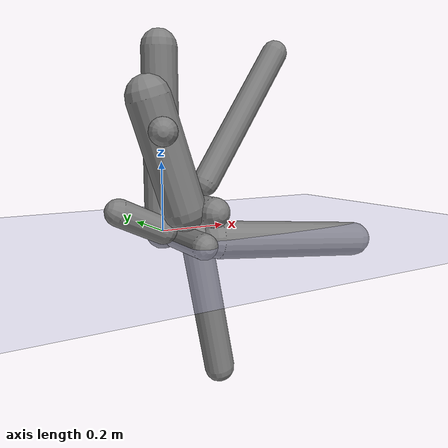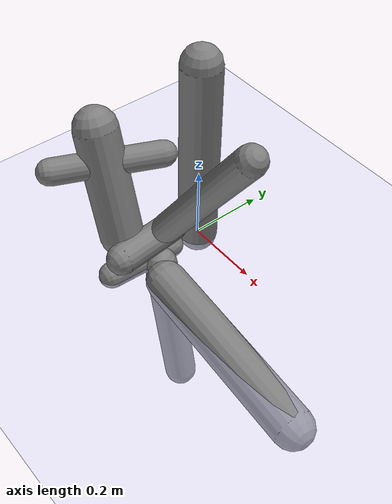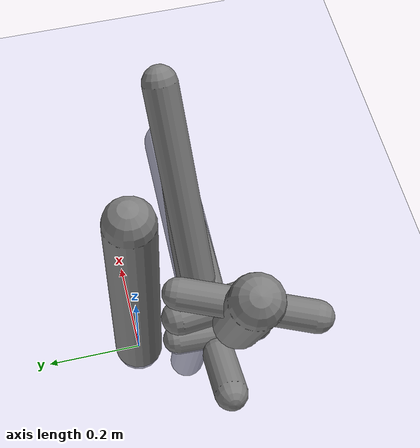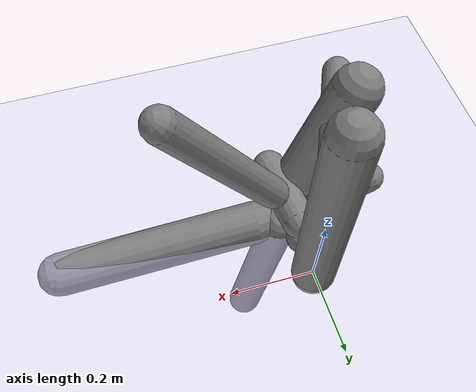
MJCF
<?xml version='1.0' encoding='UTF-8'?>
<mujoco model="robot_model">
  <worldbody>
    <light name="light" pos="0 -3 10" dir="0 0.5 -1" diffuse=".8 .8 .8" specular="0.1 0.1 0.1"/>
    <geom name="floor" type="plane" size="10.0 10.0 0.1" pos="0 0 0" rgba="0.8 0.8 1 1" contype="2" conaffinity="1"/>
    <body name="limb0" pos="0 0 0">
      <geom name="limb0_geom" type="capsule" fromto="0 0 0 0 0 0.520706421890689" size="0.05146849150302902" density="879.1260618133225" contype="1" conaffinity="2"/>
      <site type="sphere" size="0.01" name="limb0_site0" pos="0.009683200890050066 -0.09483830279968951 0.08225487408314747" quat="0.7071067811865476 0.7034496051453099 0.07182376362254696 0.0"/>
      <site type="sphere" size="0.01" name="limb0_site1" pos="-0.00316757121490341 -0.08967798132633308 0.00015657126967375578" quat="0.7071067811865476 0.7066660944373666 -0.024960588387271467 0.0"/>
      <site type="sphere" size="0.01" name="limb0_site2" pos="-0.03533232951183677 -0.08171238910853651 0.2855701818982703" quat="0.7071067811865476 0.6490309137539548 -0.28064011294130126 0.0"/>
      <freejoint name="limb0_root"/>
      <body name="limb1" pos="0.009683200890050066 -0.09483830279968951 0.08225487408314747" quat="0.7071067811865476 0.7034496051453099 0.07182376362254696 0.0">
        <geom name="limb1_geom" type="capsule" fromto="0 0 0 0 0 0.16541736647859212" size="0.03986286775195412" density="938.9867501818189" contype="1" conaffinity="2"/>
        <site type="sphere" size="0.01" name="limb1_site0" pos="0.025005996700256113 -0.08287557709443048 0.05331182125747389" quat="0.7071067811865476 0.6769623914226275 0.2042594443333214 0.0"/>
        <site type="sphere" size="0.01" name="limb1_site1" pos="0.03832402584508456 0.07078345248511242 0.05798785370287568" quat="0.7071067811865476 -0.6218158844110192 0.33666750050181826 0.0"/>
        <body name="limb2" pos="0.025005996700256113 -0.08287557709443048 0.05331182125747389" quat="0.7071067811865476 0.6769623914226275 0.2042594443333214 0.0">
          <geom name="limb2_geom" type="capsule" fromto="0 0 0 0 0 0.3936817296743239" size="0.04270306752115495" density="1142.1181366406092" contype="1" conaffinity="2"/>
          <joint name="joint_limb1_limb2_0" type="hinge" axis="0 0 1" range="-63.232893646690115 63.232893646690115" damping="5.0"/>
        </body>
        <body name="limb3" pos="0.03832402584508456 0.07078345248511242 0.05798785370287568" quat="0.7071067811865476 -0.6218158844110192 0.33666750050181826 0.0">
          <geom name="limb3_geom" type="capsule" fromto="0 0 0 0 0 0.43983046531169395" size="0.03662954246594703" density="1200.0" contype="1" conaffinity="2"/>
          <joint name="joint_limb1_limb3_0" type="hinge" axis="0 0 1" range="-54.091286844749646 54.091286844749646" damping="5.0"/>
        </body>
        <joint name="joint_limb0_limb1_0" type="hinge" axis="1 0 0" range="-70.74698605445272 70.74698605445272" damping="5.0"/>
      </body>
      <body name="limb4" pos="-0.00316757121490341 -0.08967798132633308 0.00015657126967375578" quat="0.7071067811865476 0.7066660944373666 -0.024960588387271467 0.0">
        <geom name="limb4_geom" type="capsule" fromto="0 0 0 0 0 0.1801619116606773" size="0.0342654142526419" density="674.8337433402719" contype="1" conaffinity="2"/>
        <site type="sphere" size="0.01" name="limb4_site0" pos="0.09036860443624972 -0.011595827191947853 0.07640783516528457" quat="0.7071067811865476 0.0899959350022646 0.7013563514242015 0.0"/>
        <site type="sphere" size="0.01" name="limb4_site1" pos="-0.025837592967406665 0.09123073254987871 0.12639593402274718" quat="0.7071067811865476 -0.6803480675143211 -0.19268239937661344 0.0"/>
        <site type="sphere" size="0.01" name="limb4_site2" pos="-0.06559547353583163 0.03408069224816888 0.0772065150253467" quat="0.7071067811865476 -0.3260076134473962 -0.6274703466892543 0.0"/>
        <body name="limb5" pos="0.09036860443624972 -0.011595827191947853 0.07640783516528457" quat="0.7071067811865476 0.0899959350022646 0.7013563514242015 0.0">
          <geom name="limb5_geom" type="capsule" fromto="0 0 0 0 0 0.49273132914871753" size="0.05284412353578555" density="1075.0324498949815" contype="1" conaffinity="2"/>
          <joint name="joint_limb4_limb5_0" type="hinge" axis="0 1 0" range="-70.36769792005789 70.36769792005789" damping="5.0"/>
        </body>
        <body name="limb6" pos="-0.025837592967406665 0.09123073254987871 0.12639593402274718" quat="0.7071067811865476 -0.6803480675143211 -0.19268239937661344 0.0">
          <geom name="limb6_geom" type="capsule" fromto="0 0 0 0 0 0.29045882878750123" size="0.05655350670692651" density="1091.0289928776679" contype="1" conaffinity="2"/>
          <joint name="joint_limb4_limb6_0" type="hinge" axis="1 0 0" range="-71.26069378048243 71.26069378048243" damping="5.0"/>
        </body>
        <body name="limb7" pos="-0.06559547353583163 0.03408069224816888 0.0772065150253467" quat="0.7071067811865476 -0.3260076134473962 -0.6274703466892543 0.0">
          <geom name="limb7_geom" type="capsule" fromto="0 0 0 0 0 0.12949640535912238" size="0.035655217052186564" density="780.9335705735965" contype="1" conaffinity="2"/>
          <joint name="joint_limb4_limb7_0" type="hinge" axis="1 0 0" range="-32.269066017607344 32.269066017607344" damping="5.0"/>
        </body>
        <joint name="joint_limb0_limb4_0" type="hinge" axis="1 0 0" range="-33.893167912019756 33.893167912019756" damping="5.0"/>
      </body>
      <body name="limb8" pos="-0.03533232951183677 -0.08171238910853651 0.2855701818982703" quat="0.7071067811865476 0.6490309137539548 -0.28064011294130126 0.0">
        <geom name="limb8_geom" type="capsule" fromto="0 0 0 0 0 0.27575243077999345" size="0.03355559536427834" density="785.0475922003452" contype="1" conaffinity="2"/>
        <joint name="joint_limb0_limb8_0" type="hinge" axis="1 0 0" range="-59.098013012698004 59.098013012698004" damping="5.0"/>
      </body>
    </body>
  </worldbody>
  <actuator>
    <position name="position_actuator_joint_limb0_limb1_0" joint="joint_limb0_limb1_0" gear="1.6844985986898056" inheritrange="1" forcerange="-32.223717993667606 32.223717993667606" forcelimited="true" kp="100.0"/>
    <position name="position_actuator_joint_limb1_limb2_0" joint="joint_limb1_limb2_0" gear="1.0650201992485777" inheritrange="1" forcerange="-14.742077785167293 14.742077785167293" forcelimited="true" kp="100.0"/>
    <position name="position_actuator_joint_limb1_limb3_0" joint="joint_limb1_limb3_0" gear="1.68968487401195" inheritrange="1" forcerange="-12.358895510108084 12.358895510108084" forcelimited="true" kp="100.0"/>
    <position name="position_actuator_joint_limb0_limb4_0" joint="joint_limb0_limb4_0" gear="1.5556786539001968" inheritrange="1" forcerange="-52.18312277075249 52.18312277075249" forcelimited="true" kp="100.0"/>
    <position name="position_actuator_joint_limb4_limb5_0" joint="joint_limb4_limb5_0" gear="1.6301698078758577" inheritrange="1" forcerange="-26.557666178162428 26.557666178162428" forcelimited="true" kp="100.0"/>
    <position name="position_actuator_joint_limb4_limb6_0" joint="joint_limb4_limb6_0" gear="0.8035021085021216" inheritrange="1" forcerange="-20.05369185431183 20.05369185431183" forcelimited="true" kp="100.0"/>
    <position name="position_actuator_joint_limb4_limb7_0" joint="joint_limb4_limb7_0" gear="1.900653364935264" inheritrange="1" forcerange="-2.76085394119477 2.76085394119477" forcelimited="true" kp="100.0"/>
    <position name="position_actuator_joint_limb0_limb8_0" joint="joint_limb0_limb8_0" gear="0.5517284405398799" inheritrange="1" forcerange="-4.450047156598518 4.450047156598518" forcelimited="true" kp="100.0"/>
  </actuator>
  <contact>
    <pair geom1="limb0_geom" geom2="limb1_geom"/>
    <pair geom1="limb1_geom" geom2="limb2_geom"/>
    <pair geom1="limb1_geom" geom2="limb3_geom"/>
    <pair geom1="limb0_geom" geom2="limb4_geom"/>
    <pair geom1="limb4_geom" geom2="limb5_geom"/>
    <pair geom1="limb4_geom" geom2="limb6_geom"/>
    <pair geom1="limb4_geom" geom2="limb7_geom"/>
    <pair geom1="limb0_geom" geom2="limb8_geom"/>
  </contact>
</mujoco>
